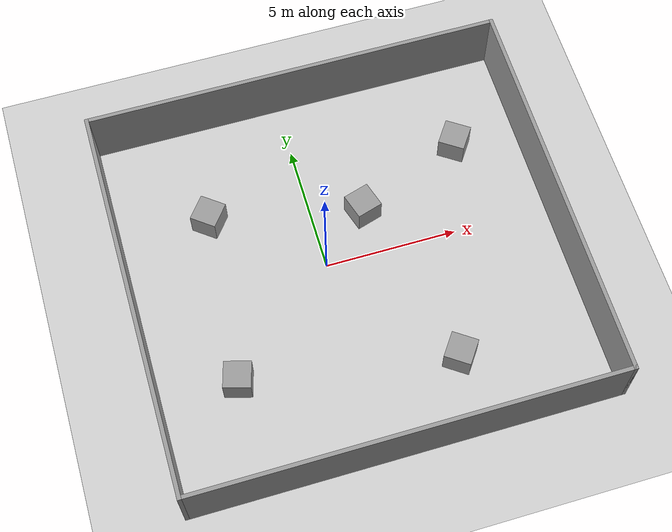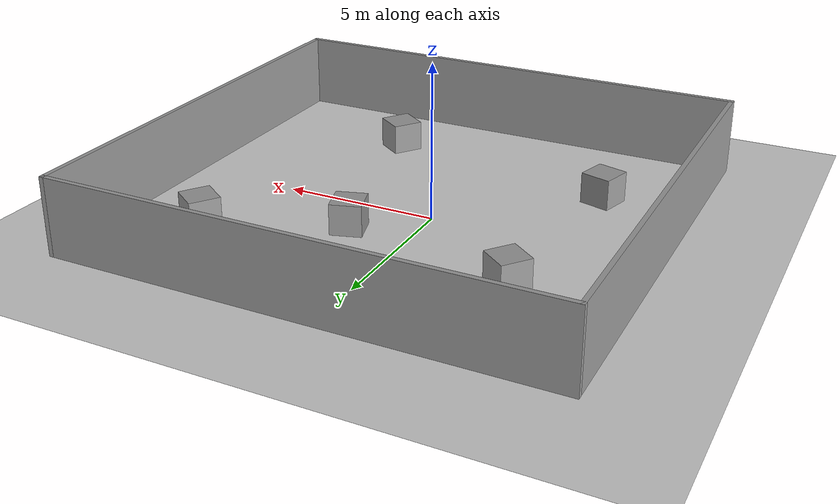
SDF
<sdf version="1.7">
 <world name="default">
  <plugin name="gazebo_ros_state" filename="libgazebo_ros_state.so">
   <ros><namespace>/gazebo</namespace></ros>
   <update_rate>1.0</update_rate>
  </plugin>
  <plugin name="gazebo_ros_properties" filename="libgazebo_ros_properties.so">
   <ros><namespace>/gazebo</namespace></ros>
  </plugin>
  <light name="sun" type="directional">
   <pose>0 0 10 0 -0 0</pose>
   <diffuse>0.8 0.8 0.8 1</diffuse>
   <specular>0.2 0.2 0.2 1</specular>
   <attenuation>
    <range>1000</range>
    <constant>0.9</constant>
    <linear>0.01</linear>
    <quadratic>0.001</quadratic>
   </attenuation>
   <direction>-0.5 0.1 -0.9</direction>
   <spot><inner_angle>0</inner_angle><outer_angle>0</outer_angle><falloff>0</falloff></spot>
  </light>
  <model name="ground_plane">
   <static>1</static>
   <link name="link">
    <collision name="collision">
     <geometry><plane><normal>0 0 1</normal><size>100 100</size></plane></geometry>
     <surface>
      <contact><collide_bitmask>65535</collide_bitmask></contact>
      <friction><ode><mu>100</mu><mu2>50</mu2></ode></friction>
     </surface>
    </collision>
    <visual name="visual">
     <cast_shadows>0</cast_shadows>
     <geometry><plane><normal>0 0 1</normal><size>100 100</size></plane></geometry>
     <material>
      <script><uri>file://media/materials/scripts/gazebo.material</uri><name>Gazebo/Grey</name></script>
     </material>
    </visual>
   </link>
  </model>
  <gravity>0 0 -9.8</gravity>
  <magnetic_field>6e-06 2.3e-05 -4.2e-05</magnetic_field>
  <atmosphere type="adiabatic"/>
  <physics type="ode">
   <max_step_size>0.001</max_step_size>
   <real_time_factor>1</real_time_factor>
   <real_time_update_rate>1000</real_time_update_rate>
  </physics>
  <scene><ambient>0.4 0.4 0.4 1</ambient><background>0.7 0.7 0.7 1</background><shadows>1</shadows></scene>
  <audio><device>default</device></audio>
  <spherical_coordinates>
   <surface_model>EARTH_WGS84</surface_model>
   <latitude_deg>0</latitude_deg>
   <longitude_deg>0</longitude_deg>
   <elevation>0</elevation>
   <heading_deg>0</heading_deg>
  </spherical_coordinates>
  <model name="Square_boundary_walls">
   <pose>0.744553 -0.336704 0 0 -0 0</pose>
   <link name="Wall_32">
    <collision name="Wall_32_Collision">
     <geometry><box><size>15 0.15 2.5</size></box></geometry>
     <pose>0 0 1.25 0 -0 0</pose>
    </collision>
    <visual name="Wall_32_Visual">
     <pose>0 0 1.25 0 -0 0</pose>
     <geometry><box><size>15 0.15 2.5</size></box></geometry>
     <material>
      <script><uri>file://media/materials/scripts/gazebo.material</uri><name>Gazebo/Grey</name></script>
      <ambient>1 1 1 1</ambient>
     </material>
     <meta><layer>0</layer></meta>
    </visual>
    <pose>-7.925 -0 0 0 -0 -1.5708</pose>
   </link>
   <link name="Wall_33">
    <collision name="Wall_33_Collision">
     <geometry><box><size>16 0.15 2.5</size></box></geometry>
     <pose>0 0 1.25 0 -0 0</pose>
    </collision>
    <visual name="Wall_33_Visual">
     <pose>0 0 1.25 0 -0 0</pose>
     <geometry><box><size>16 0.15 2.5</size></box></geometry>
     <material>
      <script><uri>file://media/materials/scripts/gazebo.material</uri><name>Gazebo/Grey</name></script>
      <ambient>1 1 1 1</ambient>
     </material>
     <meta><layer>0</layer></meta>
    </visual>
    <pose>0 -7.425 0 0 -0 0</pose>
   </link>
   <link name="Wall_34">
    <collision name="Wall_34_Collision">
     <geometry><box><size>15 0.15 2.5</size></box></geometry>
     <pose>0 0 1.25 0 -0 0</pose>
    </collision>
    <visual name="Wall_34_Visual">
     <pose>0 0 1.25 0 -0 0</pose>
     <geometry><box><size>15 0.15 2.5</size></box></geometry>
     <material>
      <script><uri>file://media/materials/scripts/gazebo.material</uri><name>Gazebo/Grey</name></script>
      <ambient>1 1 1 1</ambient>
     </material>
     <meta><layer>0</layer></meta>
    </visual>
    <pose>7.925 -0 0 0 -0 1.5708</pose>
   </link>
   <link name="Wall_35">
    <collision name="Wall_35_Collision">
     <geometry><box><size>16 0.15 2.5</size></box></geometry>
     <pose>0 0 1.25 0 -0 0</pose>
    </collision>
    <visual name="Wall_35_Visual">
     <pose>0 0 1.25 0 -0 0</pose>
     <geometry><box><size>16 0.15 2.5</size></box></geometry>
     <material>
      <script><uri>file://media/materials/scripts/gazebo.material</uri><name>Gazebo/Grey</name></script>
      <ambient>1 1 1 1</ambient>
     </material>
     <meta><layer>0</layer></meta>
    </visual>
    <pose>0 7.425 0 0 -0 3.14159</pose>
   </link>
   <static>1</static>
  </model>
  <model name="unit_box">
   <name>obstacle_1</name>
   <pose>-4.28623 -3.59294 0.5 -0 -0 -1.84797</pose>
   <link name="link">
    <inertial>
     <mass>1</mass>
     <inertia>
      <ixx>0.166667</ixx>
      <ixy>0</ixy>
      <ixz>0</ixz>
      <iyy>0.166667</iyy>
      <iyz>0</iyz>
      <izz>0.166667</izz>
     </inertia>
    </inertial>
    <collision name="collision"><geometry><box><size>1 1 1</size></box></geometry></collision>
    <visual name="visual">
     <geometry><box><size>1 1 1</size></box></geometry>
     <material>
      <script><name>Gazebo/Grey</name><uri>file://media/materials/scripts/gazebo.material</uri></script>
     </material>
    </visual>
   </link>
  </model>
  <model name="unit_box_0">
   <name>obstacle_2</name>
   <pose>-3.7246 2.95114 0.5 0 -0 -0.660114</pose>
   <link name="link">
    <inertial>
     <mass>1</mass>
     <inertia>
      <ixx>0.166667</ixx>
      <ixy>0</ixy>
      <ixz>0</ixz>
      <iyy>0.166667</iyy>
      <iyz>0</iyz>
      <izz>0.166667</izz>
     </inertia>
    </inertial>
    <collision name="collision"><geometry><box><size>1 1 1</size></box></geometry></collision>
    <visual name="visual">
     <geometry><box><size>1 1 1</size></box></geometry>
     <material>
      <script><name>Gazebo/Grey</name><uri>file://media/materials/scripts/gazebo.material</uri></script>
     </material>
    </visual>
   </link>
  </model>
  <model name="unit_box_1">
   <name>obstacle_3</name>
   <pose>3.5406 -4.88297 0.499996 1e-06 9e-06 0.953948</pose>
   <link name="link">
    <inertial>
     <mass>1</mass>
     <inertia>
      <ixx>0.166667</ixx>
      <ixy>0</ixy>
      <ixz>0</ixz>
      <iyy>0.166667</iyy>
      <iyz>0</iyz>
      <izz>0.166667</izz>
     </inertia>
    </inertial>
    <collision name="collision"><geometry><box><size>1 1 1</size></box></geometry></collision>
    <visual name="visual">
     <geometry><box><size>1 1 1</size></box></geometry>
     <material>
      <script><name>Gazebo/Grey</name><uri>file://media/materials/scripts/gazebo.material</uri></script>
     </material>
    </visual>
   </link>
  </model>
  <model name="unit_box_2">
   <name>obstacle_4</name>
   <pose>6.09503 3.48355 0.499999 5e-06 4e-06 -0.60557</pose>
   <link name="link">
    <inertial>
     <mass>1</mass>
     <inertia>
      <ixx>0.166667</ixx>
      <ixy>0</ixy>
      <ixz>0</ixz>
      <iyy>0.166667</iyy>
      <iyz>0</iyz>
      <izz>0.166667</izz>
     </inertia>
    </inertial>
    <collision name="collision"><geometry><box><size>1 1 1</size></box></geometry></collision>
    <visual name="visual">
     <geometry><box><size>1 1 1</size></box></geometry>
     <material>
      <script><name>Gazebo/Grey</name><uri>file://media/materials/scripts/gazebo.material</uri></script>
     </material>
    </visual>
   </link>
  </model>
  <model name="unit_box_3">
   <name>obstacle_5</name>
   <pose>1.91514 1.75423 0.5 0 -0 0.295425</pose>
   <link name="link">
    <inertial>
     <mass>1</mass>
     <inertia>
      <ixx>0.166667</ixx>
      <ixy>0</ixy>
      <ixz>0</ixz>
      <iyy>0.166667</iyy>
      <iyz>0</iyz>
      <izz>0.166667</izz>
     </inertia>
    </inertial>
    <collision name="collision"><geometry><box><size>1 1 1</size></box></geometry></collision>
    <visual name="visual">
     <geometry><box><size>1 1 1</size></box></geometry>
     <material>
      <script><name>Gazebo/Grey</name><uri>file://media/materials/scripts/gazebo.material</uri></script>
     </material>
    </visual>
   </link>
  </model>
 </world>
</sdf>
